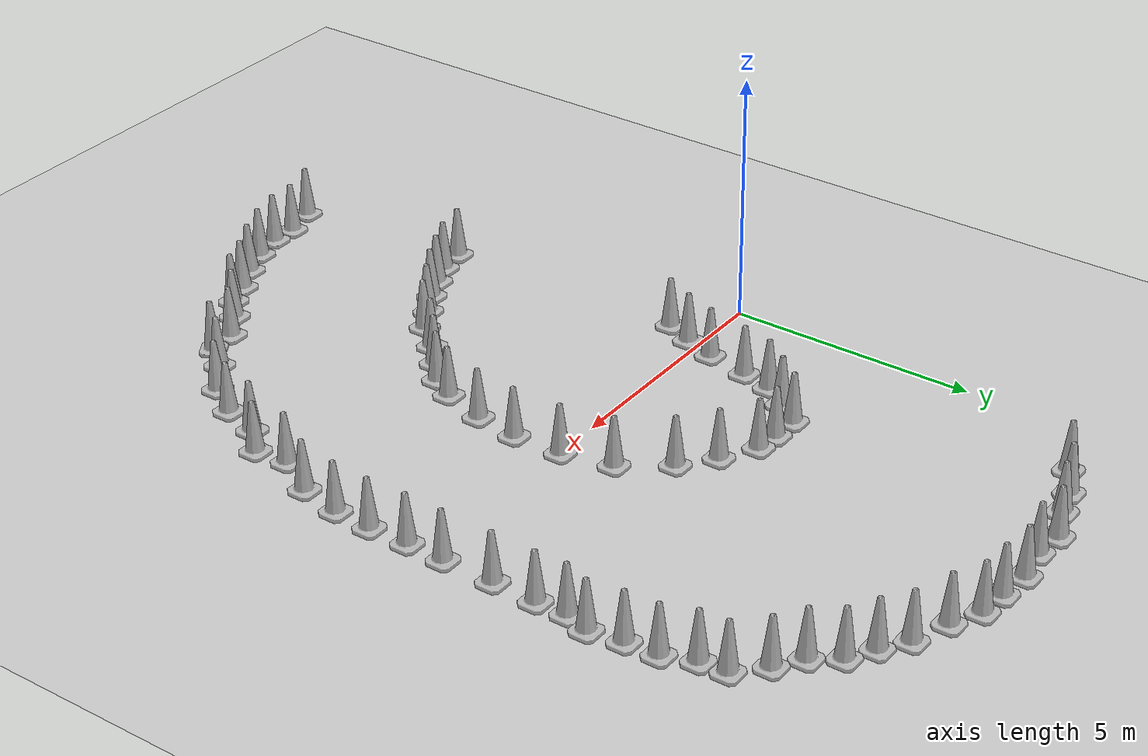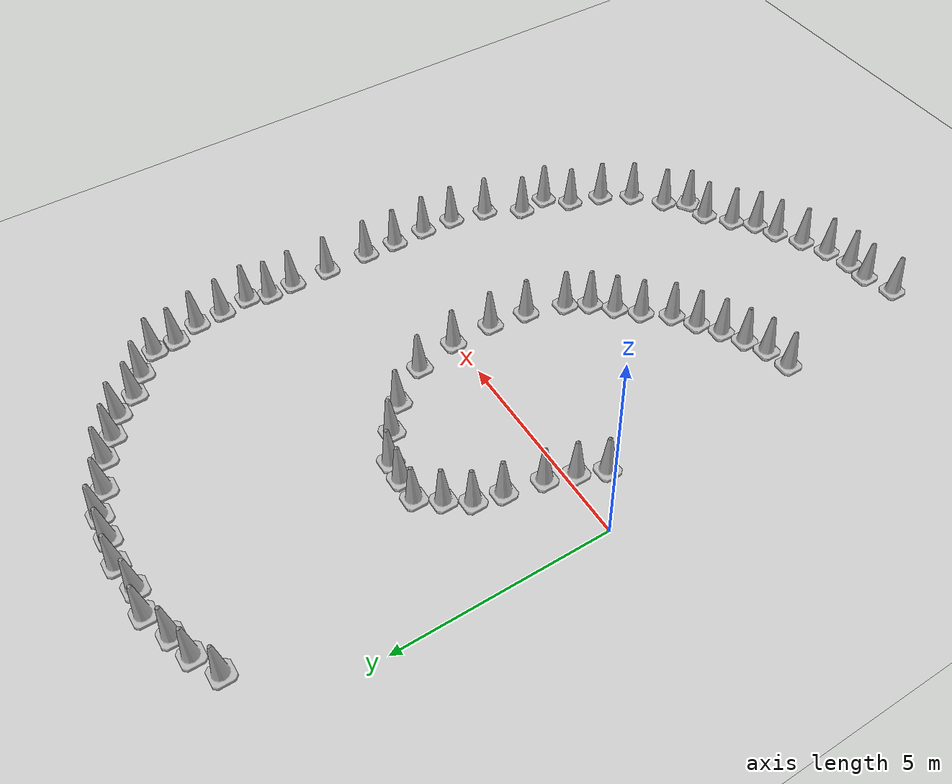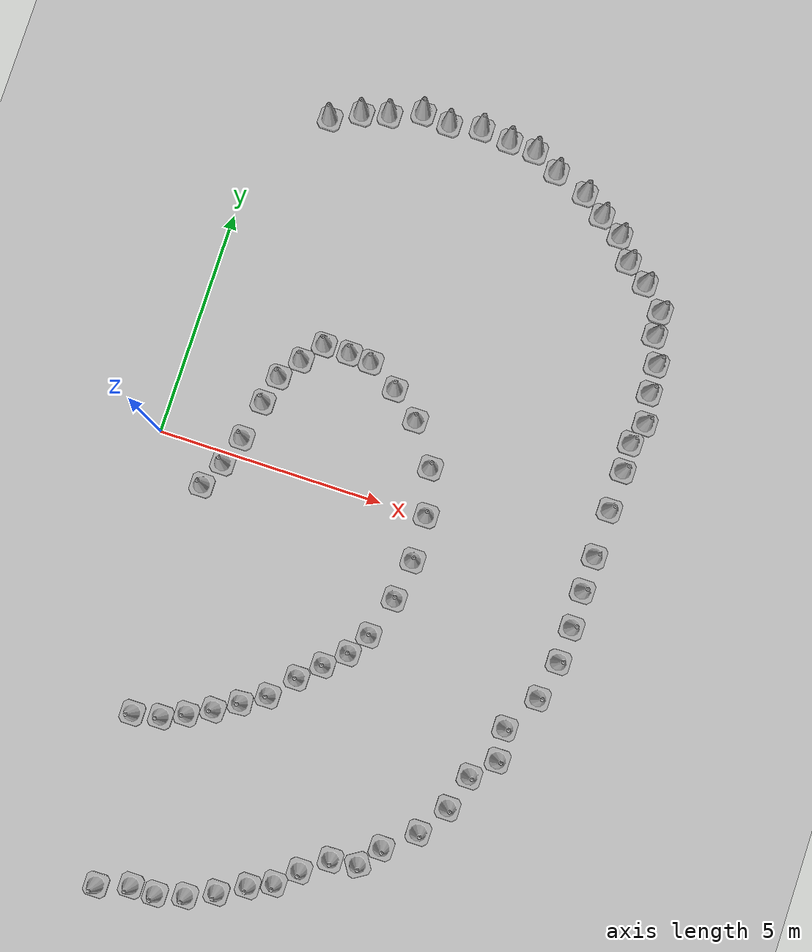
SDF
<sdf version="1.7">
 <world name="default">
  <model name="ground_plane">
   <static>1</static>
   <link name="link">
    <collision name="collision">
     <geometry><plane><normal>0 0 1</normal><size>100 100</size></plane></geometry>
     <surface>
      <contact><collide_bitmask>65535</collide_bitmask></contact>
      <friction><ode><mu>100</mu><mu2>50</mu2></ode></friction>
     </surface>
    </collision>
    <visual name="visual">
     <cast_shadows>0</cast_shadows>
     <geometry><plane><normal>0 0 1</normal><size>100 100</size></plane></geometry>
     <material>
      <script><uri>file://media/materials/scripts/gazebo.material</uri><name>Gazebo/Grey</name></script>
     </material>
    </visual>
   </link>
  </model>
  <model name="Construction Cone_8">
   <link name="link">
    <collision name="collision">
     <geometry>
      <mesh><scale>10 10 10</scale><uri>model://construction_cone/meshes/construction_cone.dae</uri></mesh>
     </geometry>
    </collision>
    <visual name="visual">
     <geometry>
      <mesh><scale>10 10 10</scale><uri>model://construction_cone/meshes/construction_cone.dae</uri></mesh>
     </geometry>
    </visual>
    <inertial>
     <inertia><ixx>1</ixx><ixy>0</ixy><ixz>0</ixz><iyy>1</iyy><iyz>0</iyz><izz>1</izz></inertia>
     <mass>1</mass>
    </inertial>
   </link>
   <pose>1.21662 -0.826146 -1e-05 -1e-06 0 0</pose>
  </model>
  <model name="Construction Cone_9">
   <link name="link">
    <collision name="collision">
     <geometry>
      <mesh><scale>10 10 10</scale><uri>model://construction_cone/meshes/construction_cone.dae</uri></mesh>
     </geometry>
    </collision>
    <visual name="visual">
     <geometry>
      <mesh><scale>10 10 10</scale><uri>model://construction_cone/meshes/construction_cone.dae</uri></mesh>
     </geometry>
    </visual>
    <inertial>
     <inertia><ixx>1</ixx><ixy>0</ixy><ixz>0</ixz><iyy>1</iyy><iyz>0</iyz><izz>1</izz></inertia>
     <mass>1</mass>
    </inertial>
   </link>
   <pose>1.71298 0.417313 -0 0 -0 0</pose>
  </model>
  <model name="Construction Cone_10">
   <link name="link">
    <collision name="collision">
     <geometry>
      <mesh><scale>10 10 10</scale><uri>model://construction_cone/meshes/construction_cone.dae</uri></mesh>
     </geometry>
    </collision>
    <visual name="visual">
     <geometry>
      <mesh><scale>10 10 10</scale><uri>model://construction_cone/meshes/construction_cone.dae</uri></mesh>
     </geometry>
    </visual>
    <inertial>
     <inertia><ixx>1</ixx><ixy>0</ixy><ixz>0</ixz><iyy>1</iyy><iyz>0</iyz><izz>1</izz></inertia>
     <mass>1</mass>
    </inertial>
   </link>
   <pose>2.05152 1.93247 -9e-06 -4e-06 1e-06 0.011427</pose>
  </model>
  <model name="Construction Cone_11">
   <link name="link">
    <collision name="collision">
     <geometry>
      <mesh><scale>10 10 10</scale><uri>model://construction_cone/meshes/construction_cone.dae</uri></mesh>
     </geometry>
    </collision>
    <visual name="visual">
     <geometry>
      <mesh><scale>10 10 10</scale><uri>model://construction_cone/meshes/construction_cone.dae</uri></mesh>
     </geometry>
    </visual>
    <inertial>
     <inertia><ixx>1</ixx><ixy>0</ixy><ixz>0</ixz><iyy>1</iyy><iyz>0</iyz><izz>1</izz></inertia>
     <mass>1</mass>
    </inertial>
   </link>
   <pose>3.85403 2.85734 -0 0 -0 0.002075</pose>
  </model>
  <model name="Construction Cone_12">
   <link name="link">
    <collision name="collision">
     <geometry>
      <mesh><scale>10 10 10</scale><uri>model://construction_cone/meshes/construction_cone.dae</uri></mesh>
     </geometry>
    </collision>
    <visual name="visual">
     <geometry>
      <mesh><scale>10 10 10</scale><uri>model://construction_cone/meshes/construction_cone.dae</uri></mesh>
     </geometry>
    </visual>
    <inertial>
     <inertia><ixx>1</ixx><ixy>0</ixy><ixz>0</ixz><iyy>1</iyy><iyz>0</iyz><izz>1</izz></inertia>
     <mass>1</mass>
    </inertial>
   </link>
   <pose>5.16762 1.9441 -0 0 -0 0</pose>
  </model>
  <model name="Construction Cone_13">
   <link name="link">
    <collision name="collision">
     <geometry>
      <mesh><scale>10 10 10</scale><uri>model://construction_cone/meshes/construction_cone.dae</uri></mesh>
     </geometry>
    </collision>
    <visual name="visual">
     <geometry>
      <mesh><scale>10 10 10</scale><uri>model://construction_cone/meshes/construction_cone.dae</uri></mesh>
     </geometry>
    </visual>
    <inertial>
     <inertia><ixx>1</ixx><ixy>0</ixy><ixz>0</ixz><iyy>1</iyy><iyz>0</iyz><izz>1</izz></inertia>
     <mass>1</mass>
    </inertial>
   </link>
   <pose>4.53615 2.45423 -0 0 -0 0</pose>
  </model>
  <model name="Construction Cone_14">
   <link name="link">
    <collision name="collision">
     <geometry>
      <mesh><scale>10 10 10</scale><uri>model://construction_cone/meshes/construction_cone.dae</uri></mesh>
     </geometry>
    </collision>
    <visual name="visual">
     <geometry>
      <mesh><scale>10 10 10</scale><uri>model://construction_cone/meshes/construction_cone.dae</uri></mesh>
     </geometry>
    </visual>
    <inertial>
     <inertia><ixx>1</ixx><ixy>0</ixy><ixz>0</ixz><iyy>1</iyy><iyz>0</iyz><izz>1</izz></inertia>
     <mass>1</mass>
    </inertial>
   </link>
   <pose>2.7693 2.90572 -0 0 -1e-06 -0.0056</pose>
  </model>
  <model name="Construction Cone_15">
   <link name="link">
    <collision name="collision">
     <geometry>
      <mesh><scale>10 10 10</scale><uri>model://construction_cone/meshes/construction_cone.dae</uri></mesh>
     </geometry>
    </collision>
    <visual name="visual">
     <geometry>
      <mesh><scale>10 10 10</scale><uri>model://construction_cone/meshes/construction_cone.dae</uri></mesh>
     </geometry>
    </visual>
    <inertial>
     <inertia><ixx>1</ixx><ixy>0</ixy><ixz>0</ixz><iyy>1</iyy><iyz>0</iyz><izz>1</izz></inertia>
     <mass>1</mass>
    </inertial>
   </link>
   <pose>1.49319 -0.228147 -0 0 -0 0</pose>
  </model>
  <model name="Construction Cone_16">
   <link name="link">
    <collision name="collision">
     <geometry>
      <mesh><scale>10 10 10</scale><uri>model://construction_cone/meshes/construction_cone.dae</uri></mesh>
     </geometry>
    </collision>
    <visual name="visual">
     <geometry>
      <mesh><scale>10 10 10</scale><uri>model://construction_cone/meshes/construction_cone.dae</uri></mesh>
     </geometry>
    </visual>
    <inertial>
     <inertia><ixx>1</ixx><ixy>0</ixy><ixz>0</ixz><iyy>1</iyy><iyz>0</iyz><izz>1</izz></inertia>
     <mass>1</mass>
    </inertial>
   </link>
   <pose>1.89693 1.29717 -0 0 -0 0</pose>
  </model>
  <model name="Construction Cone_17">
   <link name="link">
    <collision name="collision">
     <geometry>
      <mesh><scale>10 10 10</scale><uri>model://construction_cone/meshes/construction_cone.dae</uri></mesh>
     </geometry>
    </collision>
    <visual name="visual">
     <geometry>
      <mesh><scale>10 10 10</scale><uri>model://construction_cone/meshes/construction_cone.dae</uri></mesh>
     </geometry>
    </visual>
    <inertial>
     <inertia><ixx>1</ixx><ixy>0</ixy><ixz>0</ixz><iyy>1</iyy><iyz>0</iyz><izz>1</izz></inertia>
     <mass>1</mass>
    </inertial>
   </link>
   <pose>5.79564 1.05787 -0 0 -1e-06 0</pose>
  </model>
  <model name="Construction Cone_18">
   <link name="link">
    <collision name="collision">
     <geometry>
      <mesh><scale>10 10 10</scale><uri>model://construction_cone/meshes/construction_cone.dae</uri></mesh>
     </geometry>
    </collision>
    <visual name="visual">
     <geometry>
      <mesh><scale>10 10 10</scale><uri>model://construction_cone/meshes/construction_cone.dae</uri></mesh>
     </geometry>
    </visual>
    <inertial>
     <inertia><ixx>1</ixx><ixy>0</ixy><ixz>0</ixz><iyy>1</iyy><iyz>0</iyz><izz>1</izz></inertia>
     <mass>1</mass>
    </inertial>
   </link>
   <pose>6.02414 0.046803 -0 0 -0 0</pose>
  </model>
  <model name="Construction Cone_19">
   <link name="link">
    <collision name="collision">
     <geometry>
      <mesh><scale>10 10 10</scale><uri>model://construction_cone/meshes/construction_cone.dae</uri></mesh>
     </geometry>
    </collision>
    <visual name="visual">
     <geometry>
      <mesh><scale>10 10 10</scale><uri>model://construction_cone/meshes/construction_cone.dae</uri></mesh>
     </geometry>
    </visual>
    <inertial>
     <inertia><ixx>1</ixx><ixy>0</ixy><ixz>0</ixz><iyy>1</iyy><iyz>0</iyz><izz>1</izz></inertia>
     <mass>1</mass>
    </inertial>
   </link>
   <pose>6.05028 -0.964695 -0 0 -0 0</pose>
  </model>
  <model name="Construction Cone_20">
   <link name="link">
    <collision name="collision">
     <geometry>
      <mesh><scale>10 10 10</scale><uri>model://construction_cone/meshes/construction_cone.dae</uri></mesh>
     </geometry>
    </collision>
    <visual name="visual">
     <geometry>
      <mesh><scale>10 10 10</scale><uri>model://construction_cone/meshes/construction_cone.dae</uri></mesh>
     </geometry>
    </visual>
    <inertial>
     <inertia><ixx>1</ixx><ixy>0</ixy><ixz>0</ixz><iyy>1</iyy><iyz>0</iyz><izz>1</izz></inertia>
     <mass>1</mass>
    </inertial>
   </link>
   <pose>5.92745 -1.8709 -0 -0 -0 -0</pose>
  </model>
  <model name="Construction Cone_21">
   <link name="link">
    <collision name="collision">
     <geometry>
      <mesh><scale>10 10 10</scale><uri>model://construction_cone/meshes/construction_cone.dae</uri></mesh>
     </geometry>
    </collision>
    <visual name="visual">
     <geometry>
      <mesh><scale>10 10 10</scale><uri>model://construction_cone/meshes/construction_cone.dae</uri></mesh>
     </geometry>
    </visual>
    <inertial>
     <inertia><ixx>1</ixx><ixy>0</ixy><ixz>0</ixz><iyy>1</iyy><iyz>0</iyz><izz>1</izz></inertia>
     <mass>1</mass>
    </inertial>
   </link>
   <pose>5.64955 -2.78002 -0 0 -1e-06 0</pose>
  </model>
  <model name="Construction Cone_23">
   <link name="link">
    <collision name="collision">
     <geometry>
      <mesh><scale>10 10 10</scale><uri>model://construction_cone/meshes/construction_cone.dae</uri></mesh>
     </geometry>
    </collision>
    <visual name="visual">
     <geometry>
      <mesh><scale>10 10 10</scale><uri>model://construction_cone/meshes/construction_cone.dae</uri></mesh>
     </geometry>
    </visual>
    <inertial>
     <inertia><ixx>1</ixx><ixy>0</ixy><ixz>0</ixz><iyy>1</iyy><iyz>0</iyz><izz>1</izz></inertia>
     <mass>1</mass>
    </inertial>
   </link>
   <pose>1.3178 7.72218 -1e-05 -1e-06 0 0</pose>
  </model>
  <model name="Construction Cone_25">
   <link name="link">
    <collision name="collision">
     <geometry>
      <mesh><scale>10 10 10</scale><uri>model://construction_cone/meshes/construction_cone.dae</uri></mesh>
     </geometry>
    </collision>
    <visual name="visual">
     <geometry>
      <mesh><scale>10 10 10</scale><uri>model://construction_cone/meshes/construction_cone.dae</uri></mesh>
     </geometry>
    </visual>
    <inertial>
     <inertia><ixx>1</ixx><ixy>0</ixy><ixz>0</ixz><iyy>1</iyy><iyz>0</iyz><izz>1</izz></inertia>
     <mass>1</mass>
    </inertial>
   </link>
   <pose>2.54045 8.20519 -0 0 -0 0</pose>
  </model>
  <model name="Construction Cone_26">
   <link name="link">
    <collision name="collision">
     <geometry>
      <mesh><scale>10 10 10</scale><uri>model://construction_cone/meshes/construction_cone.dae</uri></mesh>
     </geometry>
    </collision>
    <visual name="visual">
     <geometry>
      <mesh><scale>10 10 10</scale><uri>model://construction_cone/meshes/construction_cone.dae</uri></mesh>
     </geometry>
    </visual>
    <inertial>
     <inertia><ixx>1</ixx><ixy>0</ixy><ixz>0</ixz><iyy>1</iyy><iyz>0</iyz><izz>1</izz></inertia>
     <mass>1</mass>
    </inertial>
   </link>
   <pose>3.85646 8.41084 -1e-05 -1e-06 0 0</pose>
  </model>
  <model name="Construction Cone_27">
   <link name="link">
    <collision name="collision">
     <geometry>
      <mesh><scale>10 10 10</scale><uri>model://construction_cone/meshes/construction_cone.dae</uri></mesh>
     </geometry>
    </collision>
    <visual name="visual">
     <geometry>
      <mesh><scale>10 10 10</scale><uri>model://construction_cone/meshes/construction_cone.dae</uri></mesh>
     </geometry>
    </visual>
    <inertial>
     <inertia><ixx>1</ixx><ixy>0</ixy><ixz>0</ixz><iyy>1</iyy><iyz>0</iyz><izz>1</izz></inertia>
     <mass>1</mass>
    </inertial>
   </link>
   <pose>5.23108 8.46225 -0 0 -0 0</pose>
  </model>
  <model name="Construction Cone_28">
   <link name="link">
    <collision name="collision">
     <geometry>
      <mesh><scale>10 10 10</scale><uri>model://construction_cone/meshes/construction_cone.dae</uri></mesh>
     </geometry>
    </collision>
    <visual name="visual">
     <geometry>
      <mesh><scale>10 10 10</scale><uri>model://construction_cone/meshes/construction_cone.dae</uri></mesh>
     </geometry>
    </visual>
    <inertial>
     <inertia><ixx>1</ixx><ixy>0</ixy><ixz>0</ixz><iyy>1</iyy><iyz>0</iyz><izz>1</izz></inertia>
     <mass>1</mass>
    </inertial>
   </link>
   <pose>6.41788 8.11984 -0 0 -0 0</pose>
  </model>
  <model name="Construction Cone_29">
   <link name="link">
    <collision name="collision">
     <geometry>
      <mesh><scale>10 10 10</scale><uri>model://construction_cone/meshes/construction_cone.dae</uri></mesh>
     </geometry>
    </collision>
    <visual name="visual">
     <geometry>
      <mesh><scale>10 10 10</scale><uri>model://construction_cone/meshes/construction_cone.dae</uri></mesh>
     </geometry>
    </visual>
    <inertial>
     <inertia><ixx>1</ixx><ixy>0</ixy><ixz>0</ixz><iyy>1</iyy><iyz>0</iyz><izz>1</izz></inertia>
     <mass>1</mass>
    </inertial>
   </link>
   <pose>7.65812 7.49906 0 -1e-06 0 0.004828</pose>
  </model>
  <model name="Construction Cone_30">
   <link name="link">
    <collision name="collision">
     <geometry>
      <mesh><scale>10 10 10</scale><uri>model://construction_cone/meshes/construction_cone.dae</uri></mesh>
     </geometry>
    </collision>
    <visual name="visual">
     <geometry>
      <mesh><scale>10 10 10</scale><uri>model://construction_cone/meshes/construction_cone.dae</uri></mesh>
     </geometry>
    </visual>
    <inertial>
     <inertia><ixx>1</ixx><ixy>0</ixy><ixz>0</ixz><iyy>1</iyy><iyz>0</iyz><izz>1</izz></inertia>
     <mass>1</mass>
    </inertial>
   </link>
   <pose>8.51314 6.69867 -0 0 0 -0.005858</pose>
  </model>
  <model name="Construction Cone_31">
   <link name="link">
    <collision name="collision">
     <geometry>
      <mesh><scale>10 10 10</scale><uri>model://construction_cone/meshes/construction_cone.dae</uri></mesh>
     </geometry>
    </collision>
    <visual name="visual">
     <geometry>
      <mesh><scale>10 10 10</scale><uri>model://construction_cone/meshes/construction_cone.dae</uri></mesh>
     </geometry>
    </visual>
    <inertial>
     <inertia><ixx>1</ixx><ixy>0</ixy><ixz>0</ixz><iyy>1</iyy><iyz>0</iyz><izz>1</izz></inertia>
     <mass>1</mass>
    </inertial>
   </link>
   <pose>9.50204 5.86042 -0 0 -1e-06 0</pose>
  </model>
  <model name="Construction Cone_32">
   <link name="link">
    <collision name="collision">
     <geometry>
      <mesh><scale>10 10 10</scale><uri>model://construction_cone/meshes/construction_cone.dae</uri></mesh>
     </geometry>
    </collision>
    <visual name="visual">
     <geometry>
      <mesh><scale>10 10 10</scale><uri>model://construction_cone/meshes/construction_cone.dae</uri></mesh>
     </geometry>
    </visual>
    <inertial>
     <inertia><ixx>1</ixx><ixy>0</ixy><ixz>0</ixz><iyy>1</iyy><iyz>0</iyz><izz>1</izz></inertia>
     <mass>1</mass>
    </inertial>
   </link>
   <pose>9.76937 4.72472 -1e-05 0 -0 0</pose>
  </model>
  <model name="Construction Cone_33">
   <link name="link">
    <collision name="collision">
     <geometry>
      <mesh><scale>10 10 10</scale><uri>model://construction_cone/meshes/construction_cone.dae</uri></mesh>
     </geometry>
    </collision>
    <visual name="visual">
     <geometry>
      <mesh><scale>10 10 10</scale><uri>model://construction_cone/meshes/construction_cone.dae</uri></mesh>
     </geometry>
    </visual>
    <inertial>
     <inertia><ixx>1</ixx><ixy>0</ixy><ixz>0</ixz><iyy>1</iyy><iyz>0</iyz><izz>1</izz></inertia>
     <mass>1</mass>
    </inertial>
   </link>
   <pose>9.91562 3.41143 -0 0 -1e-06 0.002152</pose>
  </model>
  <model name="Construction Cone_34">
   <link name="link">
    <collision name="collision">
     <geometry>
      <mesh><scale>10 10 10</scale><uri>model://construction_cone/meshes/construction_cone.dae</uri></mesh>
     </geometry>
    </collision>
    <visual name="visual">
     <geometry>
      <mesh><scale>10 10 10</scale><uri>model://construction_cone/meshes/construction_cone.dae</uri></mesh>
     </geometry>
    </visual>
    <inertial>
     <inertia><ixx>1</ixx><ixy>0</ixy><ixz>0</ixz><iyy>1</iyy><iyz>0</iyz><izz>1</izz></inertia>
     <mass>1</mass>
    </inertial>
   </link>
   <pose>9.77014 2.28502 0 -0 -0 -0</pose>
  </model>
  <model name="Construction Cone_35">
   <link name="link">
    <collision name="collision">
     <geometry>
      <mesh><scale>10 10 10</scale><uri>model://construction_cone/meshes/construction_cone.dae</uri></mesh>
     </geometry>
    </collision>
    <visual name="visual">
     <geometry>
      <mesh><scale>10 10 10</scale><uri>model://construction_cone/meshes/construction_cone.dae</uri></mesh>
     </geometry>
    </visual>
    <inertial>
     <inertia><ixx>1</ixx><ixy>0</ixy><ixz>0</ixz><iyy>1</iyy><iyz>0</iyz><izz>1</izz></inertia>
     <mass>1</mass>
    </inertial>
   </link>
   <pose>9.74625 1.38212 -0 0 -0 0</pose>
  </model>
  <model name="Construction Cone_36">
   <link name="link">
    <collision name="collision">
     <geometry>
      <mesh><scale>10 10 10</scale><uri>model://construction_cone/meshes/construction_cone.dae</uri></mesh>
     </geometry>
    </collision>
    <visual name="visual">
     <geometry>
      <mesh><scale>10 10 10</scale><uri>model://construction_cone/meshes/construction_cone.dae</uri></mesh>
     </geometry>
    </visual>
    <inertial>
     <inertia><ixx>1</ixx><ixy>0</ixy><ixz>0</ixz><iyy>1</iyy><iyz>0</iyz><izz>1</izz></inertia>
     <mass>1</mass>
    </inertial>
   </link>
   <pose>9.73989 0.328505 -0 0 -1e-06 0</pose>
  </model>
  <model name="Construction Cone_37">
   <link name="link">
    <collision name="collision">
     <geometry>
      <mesh><scale>10 10 10</scale><uri>model://construction_cone/meshes/construction_cone.dae</uri></mesh>
     </geometry>
    </collision>
    <visual name="visual">
     <geometry>
      <mesh><scale>10 10 10</scale><uri>model://construction_cone/meshes/construction_cone.dae</uri></mesh>
     </geometry>
    </visual>
    <inertial>
     <inertia><ixx>1</ixx><ixy>0</ixy><ixz>0</ixz><iyy>1</iyy><iyz>0</iyz><izz>1</izz></inertia>
     <mass>1</mass>
    </inertial>
   </link>
   <pose>9.71702 -0.459126 -0 0 -0 0</pose>
  </model>
  <model name="Construction Cone_38">
   <link name="link">
    <collision name="collision">
     <geometry>
      <mesh><scale>10 10 10</scale><uri>model://construction_cone/meshes/construction_cone.dae</uri></mesh>
     </geometry>
    </collision>
    <visual name="visual">
     <geometry>
      <mesh><scale>10 10 10</scale><uri>model://construction_cone/meshes/construction_cone.dae</uri></mesh>
     </geometry>
    </visual>
    <inertial>
     <inertia><ixx>1</ixx><ixy>0</ixy><ixz>0</ixz><iyy>1</iyy><iyz>0</iyz><izz>1</izz></inertia>
     <mass>1</mass>
    </inertial>
   </link>
   <pose>9.73359 -1.27782 -0 0 -1e-06 0</pose>
  </model>
  <model name="Construction Cone_39">
   <link name="link">
    <collision name="collision">
     <geometry>
      <mesh><scale>10 10 10</scale><uri>model://construction_cone/meshes/construction_cone.dae</uri></mesh>
     </geometry>
    </collision>
    <visual name="visual">
     <geometry>
      <mesh><scale>10 10 10</scale><uri>model://construction_cone/meshes/construction_cone.dae</uri></mesh>
     </geometry>
    </visual>
    <inertial>
     <inertia><ixx>1</ixx><ixy>0</ixy><ixz>0</ixz><iyy>1</iyy><iyz>0</iyz><izz>1</izz></inertia>
     <mass>1</mass>
    </inertial>
   </link>
   <pose>9.68814 -2.06783 -0 0 -0 0</pose>
  </model>
  <model name="Construction Cone_40">
   <link name="link">
    <collision name="collision">
     <geometry>
      <mesh><scale>10 10 10</scale><uri>model://construction_cone/meshes/construction_cone.dae</uri></mesh>
     </geometry>
    </collision>
    <visual name="visual">
     <geometry>
      <mesh><scale>10 10 10</scale><uri>model://construction_cone/meshes/construction_cone.dae</uri></mesh>
     </geometry>
    </visual>
    <inertial>
     <inertia><ixx>1</ixx><ixy>0</ixy><ixz>0</ixz><iyy>1</iyy><iyz>0</iyz><izz>1</izz></inertia>
     <mass>1</mass>
    </inertial>
   </link>
   <pose>9.50201 -2.93854 0 -0 -0 -0</pose>
  </model>
  <model name="Construction Cone_41">
   <link name="link">
    <collision name="collision">
     <geometry>
      <mesh><scale>10 10 10</scale><uri>model://construction_cone/meshes/construction_cone.dae</uri></mesh>
     </geometry>
    </collision>
    <visual name="visual">
     <geometry>
      <mesh><scale>10 10 10</scale><uri>model://construction_cone/meshes/construction_cone.dae</uri></mesh>
     </geometry>
    </visual>
    <inertial>
     <inertia><ixx>1</ixx><ixy>0</ixy><ixz>0</ixz><iyy>1</iyy><iyz>0</iyz><izz>1</izz></inertia>
     <mass>1</mass>
    </inertial>
   </link>
   <pose>9.02595 -3.76232 -0 0 -1e-06 0</pose>
  </model>
  <model name="Construction Cone_42">
   <link name="link">
    <collision name="collision">
     <geometry>
      <mesh><scale>10 10 10</scale><uri>model://construction_cone/meshes/construction_cone.dae</uri></mesh>
     </geometry>
    </collision>
    <visual name="visual">
     <geometry>
      <mesh><scale>10 10 10</scale><uri>model://construction_cone/meshes/construction_cone.dae</uri></mesh>
     </geometry>
    </visual>
    <inertial>
     <inertia><ixx>1</ixx><ixy>0</ixy><ixz>0</ixz><iyy>1</iyy><iyz>0</iyz><izz>1</izz></inertia>
     <mass>1</mass>
    </inertial>
   </link>
   <pose>9.00707 6.34854 -0 0 -1e-06 0.003849</pose>
  </model>
  <model name="Construction Cone_43">
   <link name="link">
    <collision name="collision">
     <geometry>
      <mesh><scale>10 10 10</scale><uri>model://construction_cone/meshes/construction_cone.dae</uri></mesh>
     </geometry>
    </collision>
    <visual name="visual">
     <geometry>
      <mesh><scale>10 10 10</scale><uri>model://construction_cone/meshes/construction_cone.dae</uri></mesh>
     </geometry>
    </visual>
    <inertial>
     <inertia><ixx>1</ixx><ixy>0</ixy><ixz>0</ixz><iyy>1</iyy><iyz>0</iyz><izz>1</izz></inertia>
     <mass>1</mass>
    </inertial>
   </link>
   <pose>8.16303 7.19222 -0 0 -1e-06 0.006167</pose>
  </model>
  <model name="Construction Cone_44">
   <link name="link">
    <collision name="collision">
     <geometry>
      <mesh><scale>10 10 10</scale><uri>model://construction_cone/meshes/construction_cone.dae</uri></mesh>
     </geometry>
    </collision>
    <visual name="visual">
     <geometry>
      <mesh><scale>10 10 10</scale><uri>model://construction_cone/meshes/construction_cone.dae</uri></mesh>
     </geometry>
    </visual>
    <inertial>
     <inertia><ixx>1</ixx><ixy>0</ixy><ixz>0</ixz><iyy>1</iyy><iyz>0</iyz><izz>1</izz></inertia>
     <mass>1</mass>
    </inertial>
   </link>
   <pose>7.1635 7.8478 -0 0 0 -0.000834</pose>
  </model>
  <model name="Construction Cone_45">
   <link name="link">
    <collision name="collision">
     <geometry>
      <mesh><scale>10 10 10</scale><uri>model://construction_cone/meshes/construction_cone.dae</uri></mesh>
     </geometry>
    </collision>
    <visual name="visual">
     <geometry>
      <mesh><scale>10 10 10</scale><uri>model://construction_cone/meshes/construction_cone.dae</uri></mesh>
     </geometry>
    </visual>
    <inertial>
     <inertia><ixx>1</ixx><ixy>0</ixy><ixz>0</ixz><iyy>1</iyy><iyz>0</iyz><izz>1</izz></inertia>
     <mass>1</mass>
    </inertial>
   </link>
   <pose>5.84006 8.41833 -0 0 -1e-06 0</pose>
  </model>
  <model name="Construction Cone_46">
   <link name="link">
    <collision name="collision">
     <geometry>
      <mesh><scale>10 10 10</scale><uri>model://construction_cone/meshes/construction_cone.dae</uri></mesh>
     </geometry>
    </collision>
    <visual name="visual">
     <geometry>
      <mesh><scale>10 10 10</scale><uri>model://construction_cone/meshes/construction_cone.dae</uri></mesh>
     </geometry>
    </visual>
    <inertial>
     <inertia><ixx>1</ixx><ixy>0</ixy><ixz>0</ixz><iyy>1</iyy><iyz>0</iyz><izz>1</izz></inertia>
     <mass>1</mass>
    </inertial>
   </link>
   <pose>4.56602 8.53689 -0 0 -1e-06 0</pose>
  </model>
  <model name="Construction Cone_47">
   <link name="link">
    <collision name="collision">
     <geometry>
      <mesh><scale>10 10 10</scale><uri>model://construction_cone/meshes/construction_cone.dae</uri></mesh>
     </geometry>
    </collision>
    <visual name="visual">
     <geometry>
      <mesh><scale>10 10 10</scale><uri>model://construction_cone/meshes/construction_cone.dae</uri></mesh>
     </geometry>
    </visual>
    <inertial>
     <inertia><ixx>1</ixx><ixy>0</ixy><ixz>0</ixz><iyy>1</iyy><iyz>0</iyz><izz>1</izz></inertia>
     <mass>1</mass>
    </inertial>
   </link>
   <pose>3.23226 8.47665 -3e-06 -4e-06 -1e-06 0</pose>
  </model>
  <model name="Construction Cone_48">
   <link name="link">
    <collision name="collision">
     <geometry>
      <mesh><scale>10 10 10</scale><uri>model://construction_cone/meshes/construction_cone.dae</uri></mesh>
     </geometry>
    </collision>
    <visual name="visual">
     <geometry>
      <mesh><scale>10 10 10</scale><uri>model://construction_cone/meshes/construction_cone.dae</uri></mesh>
     </geometry>
    </visual>
    <inertial>
     <inertia><ixx>1</ixx><ixy>0</ixy><ixz>0</ixz><iyy>1</iyy><iyz>0</iyz><izz>1</izz></inertia>
     <mass>1</mass>
    </inertial>
   </link>
   <pose>1.9475 8.04268 -0 0 -0 0</pose>
  </model>
  <model name="Construction Cone_58">
   <link name="link">
    <collision name="collision">
     <geometry>
      <mesh><scale>10 10 10</scale><uri>model://construction_cone/meshes/construction_cone.dae</uri></mesh>
     </geometry>
    </collision>
    <visual name="visual">
     <geometry>
      <mesh><scale>10 10 10</scale><uri>model://construction_cone/meshes/construction_cone.dae</uri></mesh>
     </geometry>
    </visual>
    <inertial>
     <inertia><ixx>1</ixx><ixy>0</ixy><ixz>0</ixz><iyy>1</iyy><iyz>0</iyz><izz>1</izz></inertia>
     <mass>1</mass>
    </inertial>
   </link>
   <pose>3.351 2.89738 -0 0 -1e-06 0.002101</pose>
  </model>
  <model name="Construction Cone_59">
   <link name="link">
    <collision name="collision">
     <geometry>
      <mesh><scale>10 10 10</scale><uri>model://construction_cone/meshes/construction_cone.dae</uri></mesh>
     </geometry>
    </collision>
    <visual name="visual">
     <geometry>
      <mesh><scale>10 10 10</scale><uri>model://construction_cone/meshes/construction_cone.dae</uri></mesh>
     </geometry>
    </visual>
    <inertial>
     <inertia><ixx>1</ixx><ixy>0</ixy><ixz>0</ixz><iyy>1</iyy><iyz>0</iyz><izz>1</izz></inertia>
     <mass>1</mass>
    </inertial>
   </link>
   <pose>2.40009 2.42961 -3e-06 -3e-06 -1e-06 -0.002414</pose>
  </model>
  <model name="Construction Cone_60">
   <link name="link">
    <collision name="collision">
     <geometry>
      <mesh><scale>10 10 10</scale><uri>model://construction_cone/meshes/construction_cone.dae</uri></mesh>
     </geometry>
    </collision>
    <visual name="visual">
     <geometry>
      <mesh><scale>10 10 10</scale><uri>model://construction_cone/meshes/construction_cone.dae</uri></mesh>
     </geometry>
    </visual>
    <inertial>
     <inertia><ixx>1</ixx><ixy>0</ixy><ixz>0</ixz><iyy>1</iyy><iyz>0</iyz><izz>1</izz></inertia>
     <mass>1</mass>
    </inertial>
   </link>
   <pose>9.54277 5.32626 -0 0 -1e-06 0</pose>
  </model>
  <model name="Construction Cone_61">
   <link name="link">
    <collision name="collision">
     <geometry>
      <mesh><scale>10 10 10</scale><uri>model://construction_cone/meshes/construction_cone.dae</uri></mesh>
     </geometry>
    </collision>
    <visual name="visual">
     <geometry>
      <mesh><scale>10 10 10</scale><uri>model://construction_cone/meshes/construction_cone.dae</uri></mesh>
     </geometry>
    </visual>
    <inertial>
     <inertia><ixx>1</ixx><ixy>0</ixy><ixz>0</ixz><iyy>1</iyy><iyz>0</iyz><izz>1</izz></inertia>
     <mass>1</mass>
    </inertial>
   </link>
   <pose>9.80846 4.07923 -0 0 -0 0</pose>
  </model>
  <model name="Construction Cone_62">
   <link name="link">
    <collision name="collision">
     <geometry>
      <mesh><scale>10 10 10</scale><uri>model://construction_cone/meshes/construction_cone.dae</uri></mesh>
     </geometry>
    </collision>
    <visual name="visual">
     <geometry>
      <mesh><scale>10 10 10</scale><uri>model://construction_cone/meshes/construction_cone.dae</uri></mesh>
     </geometry>
    </visual>
    <inertial>
     <inertia><ixx>1</ixx><ixy>0</ixy><ixz>0</ixz><iyy>1</iyy><iyz>0</iyz><izz>1</izz></inertia>
     <mass>1</mass>
    </inertial>
   </link>
   <pose>9.74582 2.90813 -0 0 -1e-06 0.002109</pose>
  </model>
  <model name="Construction Cone_63">
   <link name="link">
    <collision name="collision">
     <geometry>
      <mesh><scale>10 10 10</scale><uri>model://construction_cone/meshes/construction_cone.dae</uri></mesh>
     </geometry>
    </collision>
    <visual name="visual">
     <geometry>
      <mesh><scale>10 10 10</scale><uri>model://construction_cone/meshes/construction_cone.dae</uri></mesh>
     </geometry>
    </visual>
    <inertial>
     <inertia><ixx>1</ixx><ixy>0</ixy><ixz>0</ixz><iyy>1</iyy><iyz>0</iyz><izz>1</izz></inertia>
     <mass>1</mass>
    </inertial>
   </link>
   <pose>5.3494 -3.28439 -0 0 -0 0.000618</pose>
  </model>
  <model name="Construction Cone_64">
   <link name="link">
    <collision name="collision">
     <geometry>
      <mesh><scale>10 10 10</scale><uri>model://construction_cone/meshes/construction_cone.dae</uri></mesh>
     </geometry>
    </collision>
    <visual name="visual">
     <geometry>
      <mesh><scale>10 10 10</scale><uri>model://construction_cone/meshes/construction_cone.dae</uri></mesh>
     </geometry>
    </visual>
    <inertial>
     <inertia><ixx>1</ixx><ixy>0</ixy><ixz>0</ixz><iyy>1</iyy><iyz>0</iyz><izz>1</izz></inertia>
     <mass>1</mass>
    </inertial>
   </link>
   <pose>4.91401 -3.69234 -0 0 -0 0.000915</pose>
  </model>
  <model name="Construction Cone_65">
   <link name="link">
    <collision name="collision">
     <geometry>
      <mesh><scale>10 10 10</scale><uri>model://construction_cone/meshes/construction_cone.dae</uri></mesh>
     </geometry>
    </collision>
    <visual name="visual">
     <geometry>
      <mesh><scale>10 10 10</scale><uri>model://construction_cone/meshes/construction_cone.dae</uri></mesh>
     </geometry>
    </visual>
    <inertial>
     <inertia><ixx>1</ixx><ixy>0</ixy><ixz>0</ixz><iyy>1</iyy><iyz>0</iyz><izz>1</izz></inertia>
     <mass>1</mass>
    </inertial>
   </link>
   <pose>4.46508 -4.1238 -9e-06 -3e-06 -0 -0</pose>
  </model>
  <model name="Construction Cone_66">
   <link name="link">
    <collision name="collision">
     <geometry>
      <mesh><scale>10 10 10</scale><uri>model://construction_cone/meshes/construction_cone.dae</uri></mesh>
     </geometry>
    </collision>
    <visual name="visual">
     <geometry>
      <mesh><scale>10 10 10</scale><uri>model://construction_cone/meshes/construction_cone.dae</uri></mesh>
     </geometry>
    </visual>
    <inertial>
     <inertia><ixx>1</ixx><ixy>0</ixy><ixz>0</ixz><iyy>1</iyy><iyz>0</iyz><izz>1</izz></inertia>
     <mass>1</mass>
    </inertial>
   </link>
   <pose>4.00232 -4.67538 0 -0 -0 -0</pose>
  </model>
  <model name="Construction Cone_67">
   <link name="link">
    <collision name="collision">
     <geometry>
      <mesh><scale>10 10 10</scale><uri>model://construction_cone/meshes/construction_cone.dae</uri></mesh>
     </geometry>
    </collision>
    <visual name="visual">
     <geometry>
      <mesh><scale>10 10 10</scale><uri>model://construction_cone/meshes/construction_cone.dae</uri></mesh>
     </geometry>
    </visual>
    <inertial>
     <inertia><ixx>1</ixx><ixy>0</ixy><ixz>0</ixz><iyy>1</iyy><iyz>0</iyz><izz>1</izz></inertia>
     <mass>1</mass>
    </inertial>
   </link>
   <pose>3.48664 -5.00246 -3e-06 4e-06 1e-06 0.077807</pose>
  </model>
  <model name="Construction Cone_68">
   <link name="link">
    <collision name="collision">
     <geometry>
      <mesh><scale>10 10 10</scale><uri>model://construction_cone/meshes/construction_cone.dae</uri></mesh>
     </geometry>
    </collision>
    <visual name="visual">
     <geometry>
      <mesh><scale>10 10 10</scale><uri>model://construction_cone/meshes/construction_cone.dae</uri></mesh>
     </geometry>
    </visual>
    <inertial>
     <inertia><ixx>1</ixx><ixy>0</ixy><ixz>0</ixz><iyy>1</iyy><iyz>0</iyz><izz>1</izz></inertia>
     <mass>1</mass>
    </inertial>
   </link>
   <pose>2.98121 -5.31822 -0 0 0 -0.042183</pose>
  </model>
  <model name="Construction Cone_69">
   <link name="link">
    <collision name="collision">
     <geometry>
      <mesh><scale>10 10 10</scale><uri>model://construction_cone/meshes/construction_cone.dae</uri></mesh>
     </geometry>
    </collision>
    <visual name="visual">
     <geometry>
      <mesh><scale>10 10 10</scale><uri>model://construction_cone/meshes/construction_cone.dae</uri></mesh>
     </geometry>
    </visual>
    <inertial>
     <inertia><ixx>1</ixx><ixy>0</ixy><ixz>0</ixz><iyy>1</iyy><iyz>0</iyz><izz>1</izz></inertia>
     <mass>1</mass>
    </inertial>
   </link>
   <pose>2.46985 -5.57949 -0 0 0 -0.000413</pose>
  </model>
  <model name="Construction Cone_70">
   <link name="link">
    <collision name="collision">
     <geometry>
      <mesh><scale>10 10 10</scale><uri>model://construction_cone/meshes/construction_cone.dae</uri></mesh>
     </geometry>
    </collision>
    <visual name="visual">
     <geometry>
      <mesh><scale>10 10 10</scale><uri>model://construction_cone/meshes/construction_cone.dae</uri></mesh>
     </geometry>
    </visual>
    <inertial>
     <inertia><ixx>1</ixx><ixy>0</ixy><ixz>0</ixz><iyy>1</iyy><iyz>0</iyz><izz>1</izz></inertia>
     <mass>1</mass>
    </inertial>
   </link>
   <pose>1.96615 -5.80478 0 -1e-06 -1e-06 -0.004446</pose>
  </model>
  <model name="Construction Cone_71">
   <link name="link">
    <collision name="collision">
     <geometry>
      <mesh><scale>10 10 10</scale><uri>model://construction_cone/meshes/construction_cone.dae</uri></mesh>
     </geometry>
    </collision>
    <visual name="visual">
     <geometry>
      <mesh><scale>10 10 10</scale><uri>model://construction_cone/meshes/construction_cone.dae</uri></mesh>
     </geometry>
    </visual>
    <inertial>
     <inertia><ixx>1</ixx><ixy>0</ixy><ixz>0</ixz><iyy>1</iyy><iyz>0</iyz><izz>1</izz></inertia>
     <mass>1</mass>
    </inertial>
   </link>
   <pose>1.36189 -5.9184 -0 0 -0 0</pose>
  </model>
  <model name="Construction Cone_110">
   <link name="link">
    <collision name="collision">
     <geometry>
      <mesh><scale>10 10 10</scale><uri>model://construction_cone/meshes/construction_cone.dae</uri></mesh>
     </geometry>
    </collision>
    <visual name="visual">
     <geometry>
      <mesh><scale>10 10 10</scale><uri>model://construction_cone/meshes/construction_cone.dae</uri></mesh>
     </geometry>
    </visual>
    <inertial>
     <inertia><ixx>1</ixx><ixy>0</ixy><ixz>0</ixz><iyy>1</iyy><iyz>0</iyz><izz>1</izz></inertia>
     <mass>1</mass>
    </inertial>
   </link>
   <pose>9.08309 -4.45907 -0 0 -1e-06 0</pose>
  </model>
  <model name="Construction Cone_111">
   <link name="link">
    <collision name="collision">
     <geometry>
      <mesh><scale>10 10 10</scale><uri>model://construction_cone/meshes/construction_cone.dae</uri></mesh>
     </geometry>
    </collision>
    <visual name="visual">
     <geometry>
      <mesh><scale>10 10 10</scale><uri>model://construction_cone/meshes/construction_cone.dae</uri></mesh>
     </geometry>
    </visual>
    <inertial>
     <inertia><ixx>1</ixx><ixy>0</ixy><ixz>0</ixz><iyy>1</iyy><iyz>0</iyz><izz>1</izz></inertia>
     <mass>1</mass>
    </inertial>
   </link>
   <pose>8.6151 -4.96388 -1e-05 0 -0 0</pose>
  </model>
  <model name="Construction Cone_112">
   <link name="link">
    <collision name="collision">
     <geometry>
      <mesh><scale>10 10 10</scale><uri>model://construction_cone/meshes/construction_cone.dae</uri></mesh>
     </geometry>
    </collision>
    <visual name="visual">
     <geometry>
      <mesh><scale>10 10 10</scale><uri>model://construction_cone/meshes/construction_cone.dae</uri></mesh>
     </geometry>
    </visual>
    <inertial>
     <inertia><ixx>1</ixx><ixy>0</ixy><ixz>0</ixz><iyy>1</iyy><iyz>0</iyz><izz>1</izz></inertia>
     <mass>1</mass>
    </inertial>
   </link>
   <pose>8.37896 -5.74293 -0 0 -1e-06 0</pose>
  </model>
  <model name="Construction Cone_113">
   <link name="link">
    <collision name="collision">
     <geometry>
      <mesh><scale>10 10 10</scale><uri>model://construction_cone/meshes/construction_cone.dae</uri></mesh>
     </geometry>
    </collision>
    <visual name="visual">
     <geometry>
      <mesh><scale>10 10 10</scale><uri>model://construction_cone/meshes/construction_cone.dae</uri></mesh>
     </geometry>
    </visual>
    <inertial>
     <inertia><ixx>1</ixx><ixy>0</ixy><ixz>0</ixz><iyy>1</iyy><iyz>0</iyz><izz>1</izz></inertia>
     <mass>1</mass>
    </inertial>
   </link>
   <pose>7.94502 -6.42583 -0 0 -0 0</pose>
  </model>
  <model name="Construction Cone_113_clone">
   <link name="link">
    <collision name="collision">
     <geometry>
      <mesh><scale>10 10 10</scale><uri>model://construction_cone/meshes/construction_cone.dae</uri></mesh>
     </geometry>
    </collision>
    <visual name="visual">
     <geometry>
      <mesh><scale>10 10 10</scale><uri>model://construction_cone/meshes/construction_cone.dae</uri></mesh>
     </geometry>
    </visual>
    <inertial>
     <inertia><ixx>1</ixx><ixy>0</ixy><ixz>0</ixz><iyy>1</iyy><iyz>0</iyz><izz>1</izz></inertia>
     <mass>1</mass>
    </inertial>
   </link>
   <pose>7.30147 -6.97383 -0 0 -1e-06 -0.000397</pose>
  </model>
  <model name="Construction Cone_113_clone_0">
   <link name="link">
    <collision name="collision">
     <geometry>
      <mesh><scale>10 10 10</scale><uri>model://construction_cone/meshes/construction_cone.dae</uri></mesh>
     </geometry>
    </collision>
    <visual name="visual">
     <geometry>
      <mesh><scale>10 10 10</scale><uri>model://construction_cone/meshes/construction_cone.dae</uri></mesh>
     </geometry>
    </visual>
    <inertial>
     <inertia><ixx>1</ixx><ixy>0</ixy><ixz>0</ixz><iyy>1</iyy><iyz>0</iyz><izz>1</izz></inertia>
     <mass>1</mass>
    </inertial>
   </link>
   <pose>6.93281 -7.46503 -9e-06 0 -0 0.555894</pose>
  </model>
  <model name="Construction Cone_113_clone_1">
   <link name="link">
    <collision name="collision">
     <geometry>
      <mesh><scale>10 10 10</scale><uri>model://construction_cone/meshes/construction_cone.dae</uri></mesh>
     </geometry>
    </collision>
    <visual name="visual">
     <geometry>
      <mesh><scale>10 10 10</scale><uri>model://construction_cone/meshes/construction_cone.dae</uri></mesh>
     </geometry>
    </visual>
    <inertial>
     <inertia><ixx>1</ixx><ixy>0</ixy><ixz>0</ixz><iyy>1</iyy><iyz>0</iyz><izz>1</izz></inertia>
     <mass>1</mass>
    </inertial>
   </link>
   <pose>6.3491 -7.54198 -0 0 -0 0.020911</pose>
  </model>
  <model name="Construction Cone_113_clone_2">
   <link name="link">
    <collision name="collision">
     <geometry>
      <mesh><scale>10 10 10</scale><uri>model://construction_cone/meshes/construction_cone.dae</uri></mesh>
     </geometry>
    </collision>
    <visual name="visual">
     <geometry>
      <mesh><scale>10 10 10</scale><uri>model://construction_cone/meshes/construction_cone.dae</uri></mesh>
     </geometry>
    </visual>
    <inertial>
     <inertia><ixx>1</ixx><ixy>0</ixy><ixz>0</ixz><iyy>1</iyy><iyz>0</iyz><izz>1</izz></inertia>
     <mass>1</mass>
    </inertial>
   </link>
   <pose>5.79654 -7.96602 -0 0 -0 0.000339</pose>
  </model>
  <model name="Construction Cone_113_clone_3">
   <link name="link">
    <collision name="collision">
     <geometry>
      <mesh><scale>10 10 10</scale><uri>model://construction_cone/meshes/construction_cone.dae</uri></mesh>
     </geometry>
    </collision>
    <visual name="visual">
     <geometry>
      <mesh><scale>10 10 10</scale><uri>model://construction_cone/meshes/construction_cone.dae</uri></mesh>
     </geometry>
    </visual>
    <inertial>
     <inertia><ixx>1</ixx><ixy>0</ixy><ixz>0</ixz><iyy>1</iyy><iyz>0</iyz><izz>1</izz></inertia>
     <mass>1</mass>
    </inertial>
   </link>
   <pose>5.37314 -8.38598 -0 -0 -1e-06 0.001064</pose>
  </model>
  <model name="Construction Cone_113_clone_4">
   <link name="link">
    <collision name="collision">
     <geometry>
      <mesh><scale>10 10 10</scale><uri>model://construction_cone/meshes/construction_cone.dae</uri></mesh>
     </geometry>
    </collision>
    <visual name="visual">
     <geometry>
      <mesh><scale>10 10 10</scale><uri>model://construction_cone/meshes/construction_cone.dae</uri></mesh>
     </geometry>
    </visual>
    <inertial>
     <inertia><ixx>1</ixx><ixy>0</ixy><ixz>0</ixz><iyy>1</iyy><iyz>0</iyz><izz>1</izz></inertia>
     <mass>1</mass>
    </inertial>
   </link>
   <pose>4.85918 -8.60398 -0 0 -1e-06 0</pose>
  </model>
  <model name="Construction Cone_113_clone_5">
   <link name="link">
    <collision name="collision">
     <geometry>
      <mesh><scale>10 10 10</scale><uri>model://construction_cone/meshes/construction_cone.dae</uri></mesh>
     </geometry>
    </collision>
    <visual name="visual">
     <geometry>
      <mesh><scale>10 10 10</scale><uri>model://construction_cone/meshes/construction_cone.dae</uri></mesh>
     </geometry>
    </visual>
    <inertial>
     <inertia><ixx>1</ixx><ixy>0</ixy><ixz>0</ixz><iyy>1</iyy><iyz>0</iyz><izz>1</izz></inertia>
     <mass>1</mass>
    </inertial>
   </link>
   <pose>4.27273 -8.94086 -0 0 -0 0</pose>
  </model>
  <model name="Construction Cone_113_clone_6">
   <link name="link">
    <collision name="collision">
     <geometry>
      <mesh><scale>10 10 10</scale><uri>model://construction_cone/meshes/construction_cone.dae</uri></mesh>
     </geometry>
    </collision>
    <visual name="visual">
     <geometry>
      <mesh><scale>10 10 10</scale><uri>model://construction_cone/meshes/construction_cone.dae</uri></mesh>
     </geometry>
    </visual>
    <inertial>
     <inertia><ixx>1</ixx><ixy>0</ixy><ixz>0</ixz><iyy>1</iyy><iyz>0</iyz><izz>1</izz></inertia>
     <mass>1</mass>
    </inertial>
   </link>
   <pose>3.66653 -9.20976 -3e-06 -4e-06 -1e-06 0</pose>
  </model>
  <model name="Construction Cone_113_clone_7">
   <link name="link">
    <collision name="collision">
     <geometry>
      <mesh><scale>10 10 10</scale><uri>model://construction_cone/meshes/construction_cone.dae</uri></mesh>
     </geometry>
    </collision>
    <visual name="visual">
     <geometry>
      <mesh><scale>10 10 10</scale><uri>model://construction_cone/meshes/construction_cone.dae</uri></mesh>
     </geometry>
    </visual>
    <inertial>
     <inertia><ixx>1</ixx><ixy>0</ixy><ixz>0</ixz><iyy>1</iyy><iyz>0</iyz><izz>1</izz></inertia>
     <mass>1</mass>
    </inertial>
   </link>
   <pose>3.04487 -9.36892 0 -0 -0 -0</pose>
  </model>
  <model name="Construction Cone_113_clone_8">
   <link name="link">
    <collision name="collision">
     <geometry>
      <mesh><scale>10 10 10</scale><uri>model://construction_cone/meshes/construction_cone.dae</uri></mesh>
     </geometry>
    </collision>
    <visual name="visual">
     <geometry>
      <mesh><scale>10 10 10</scale><uri>model://construction_cone/meshes/construction_cone.dae</uri></mesh>
     </geometry>
    </visual>
    <inertial>
     <inertia><ixx>1</ixx><ixy>0</ixy><ixz>0</ixz><iyy>1</iyy><iyz>0</iyz><izz>1</izz></inertia>
     <mass>1</mass>
    </inertial>
   </link>
   <pose>2.50439 -9.36375 -3e-06 -4e-06 -1e-06 0</pose>
  </model>
  <model name="Construction Cone_113_clone_9">
   <link name="link">
    <collision name="collision">
     <geometry>
      <mesh><scale>10 10 10</scale><uri>model://construction_cone/meshes/construction_cone.dae</uri></mesh>
     </geometry>
    </collision>
    <visual name="visual">
     <geometry>
      <mesh><scale>10 10 10</scale><uri>model://construction_cone/meshes/construction_cone.dae</uri></mesh>
     </geometry>
    </visual>
    <inertial>
     <inertia><ixx>1</ixx><ixy>0</ixy><ixz>0</ixz><iyy>1</iyy><iyz>0</iyz><izz>1</izz></inertia>
     <mass>1</mass>
    </inertial>
   </link>
   <pose>1.79916 -9.57657 -0 0 -0 0</pose>
  </model>
 </world>
</sdf>
